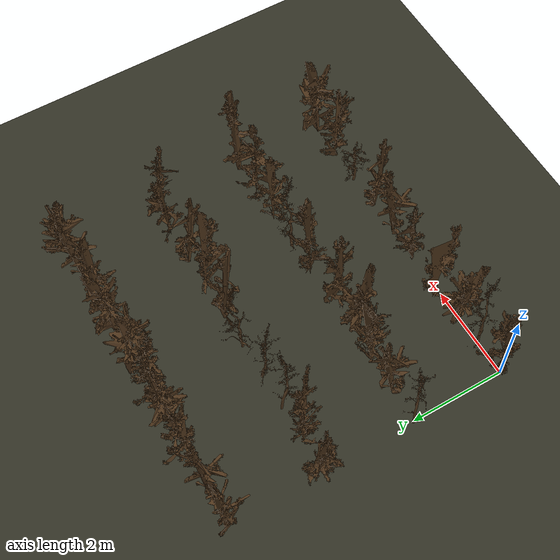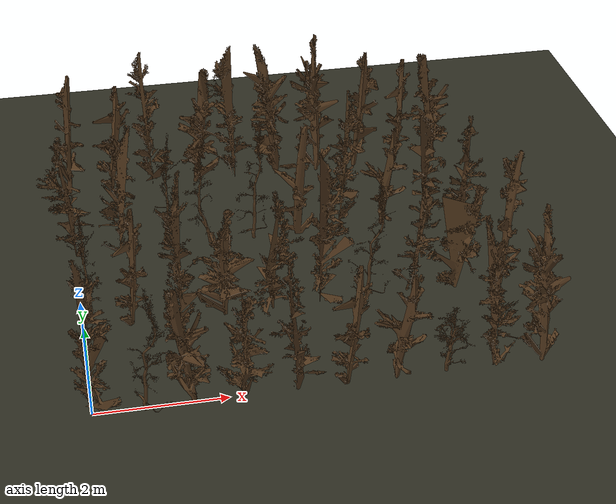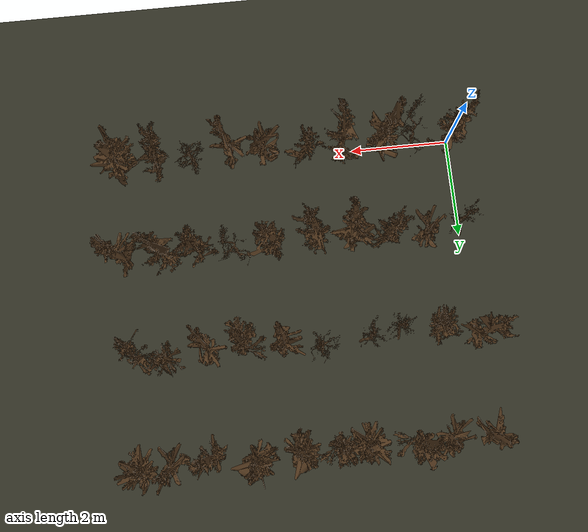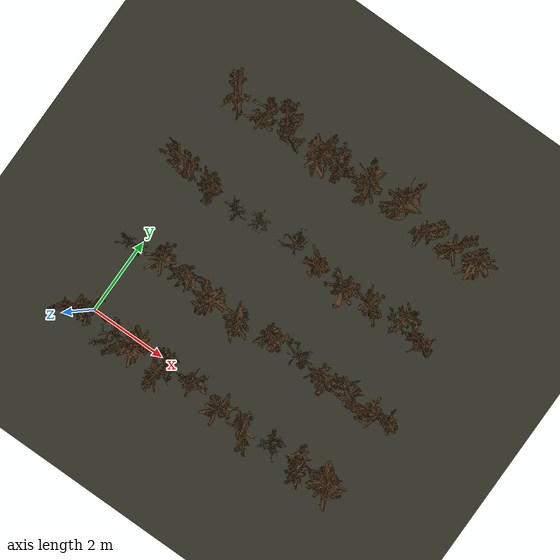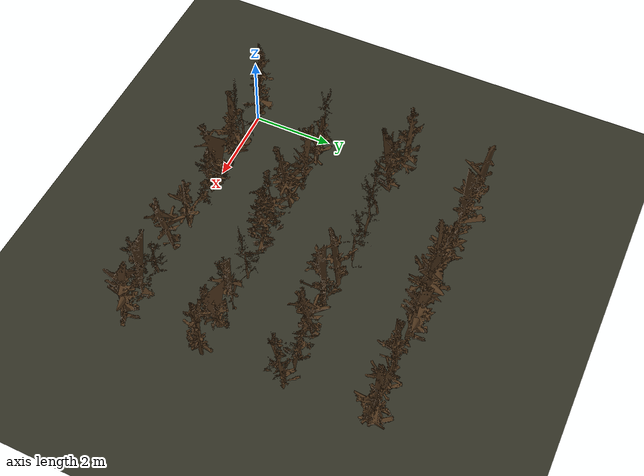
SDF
<sdf version="1.9">
 <world name="orchard_dormant_world">
  <model name="ground_plane">
   <static>true</static>
   <link name="link">
    <collision name="collision">
     <geometry><plane><normal>0 0 1</normal><size>500 500</size></plane></geometry>
    </collision>
    <visual name="visual">
     <geometry><plane><normal>0 0 1</normal><size>500 500</size></plane></geometry>
     <material><ambient>0.2 0.2 0.15 1</ambient><diffuse>0.2 0.2 0.15 1</diffuse></material>
    </visual>
   </link>
  </model>
  <model name="tree_r1_t1">
   <static>true</static>
   <pose>0.000 0.000 -0.100 0 0 3.366</pose>
   <link name="link">
    <collision name="collision">
     <geometry>
      <mesh>
       <uri>file:///home/administrator/ros2/orchard_navigation_rl_ws/src/orchard_worlds/models/orchard_model/tree3_collision.stl</uri>
      </mesh>
     </geometry>
    </collision>
    <visual name="visual">
     <geometry>
      <mesh>
       <uri>file:///home/administrator/ros2/orchard_navigation_rl_ws/src/orchard_worlds/models/orchard_model/tree3.stl</uri>
      </mesh>
     </geometry>
     <material><ambient>0.3 0.2 0.1 1</ambient><diffuse>0.3 0.2 0.1 1</diffuse></material>
    </visual>
   </link>
  </model>
  <model name="tree_r1_t2">
   <static>true</static>
   <pose>0.750 0.000 -0.100 0 0 1.388</pose>
   <link name="link">
    <collision name="collision">
     <geometry>
      <mesh>
       <uri>file:///home/administrator/ros2/orchard_navigation_rl_ws/src/orchard_worlds/models/orchard_model/tree9_collision.stl</uri>
      </mesh>
     </geometry>
    </collision>
    <visual name="visual">
     <geometry>
      <mesh>
       <uri>file:///home/administrator/ros2/orchard_navigation_rl_ws/src/orchard_worlds/models/orchard_model/tree9.stl</uri>
      </mesh>
     </geometry>
     <material><ambient>0.3 0.2 0.1 1</ambient><diffuse>0.3 0.2 0.1 1</diffuse></material>
    </visual>
   </link>
  </model>
  <model name="tree_r1_t3">
   <static>true</static>
   <pose>1.500 0.000 -0.100 0 0 6.178</pose>
   <link name="link">
    <collision name="collision">
     <geometry>
      <mesh>
       <uri>file:///home/administrator/ros2/orchard_navigation_rl_ws/src/orchard_worlds/models/orchard_model/tree12_collision.stl</uri>
      </mesh>
     </geometry>
    </collision>
    <visual name="visual">
     <geometry>
      <mesh>
       <uri>file:///home/administrator/ros2/orchard_navigation_rl_ws/src/orchard_worlds/models/orchard_model/tree12.stl</uri>
      </mesh>
     </geometry>
     <material><ambient>0.3 0.2 0.1 1</ambient><diffuse>0.3 0.2 0.1 1</diffuse></material>
    </visual>
   </link>
  </model>
  <model name="tree_r1_t4">
   <static>true</static>
   <pose>2.250 0.000 -0.100 0 0 1.082</pose>
   <link name="link">
    <collision name="collision">
     <geometry>
      <mesh>
       <uri>file:///home/administrator/ros2/orchard_navigation_rl_ws/src/orchard_worlds/models/orchard_model/tree11_collision.stl</uri>
      </mesh>
     </geometry>
    </collision>
    <visual name="visual">
     <geometry>
      <mesh>
       <uri>file:///home/administrator/ros2/orchard_navigation_rl_ws/src/orchard_worlds/models/orchard_model/tree11.stl</uri>
      </mesh>
     </geometry>
     <material><ambient>0.3 0.2 0.1 1</ambient><diffuse>0.3 0.2 0.1 1</diffuse></material>
    </visual>
   </link>
  </model>
  <model name="tree_r1_t5">
   <static>true</static>
   <pose>3.000 0.000 -0.100 0 0 4.075</pose>
   <link name="link">
    <collision name="collision">
     <geometry>
      <mesh>
       <uri>file:///home/administrator/ros2/orchard_navigation_rl_ws/src/orchard_worlds/models/orchard_model/tree2_collision.stl</uri>
      </mesh>
     </geometry>
    </collision>
    <visual name="visual">
     <geometry>
      <mesh>
       <uri>file:///home/administrator/ros2/orchard_navigation_rl_ws/src/orchard_worlds/models/orchard_model/tree2.stl</uri>
      </mesh>
     </geometry>
     <material><ambient>0.3 0.2 0.1 1</ambient><diffuse>0.3 0.2 0.1 1</diffuse></material>
    </visual>
   </link>
  </model>
  <model name="tree_r1_t6">
   <static>true</static>
   <pose>3.750 0.000 -0.100 0 0 2.890</pose>
   <link name="link">
    <collision name="collision">
     <geometry>
      <mesh>
       <uri>file:///home/administrator/ros2/orchard_navigation_rl_ws/src/orchard_worlds/models/orchard_model/tree8_collision.stl</uri>
      </mesh>
     </geometry>
    </collision>
    <visual name="visual">
     <geometry>
      <mesh>
       <uri>file:///home/administrator/ros2/orchard_navigation_rl_ws/src/orchard_worlds/models/orchard_model/tree8.stl</uri>
      </mesh>
     </geometry>
     <material><ambient>0.3 0.2 0.1 1</ambient><diffuse>0.3 0.2 0.1 1</diffuse></material>
    </visual>
   </link>
  </model>
  <model name="tree_r1_t7">
   <static>true</static>
   <pose>4.500 0.000 -0.100 0 0 1.266</pose>
   <link name="link">
    <collision name="collision">
     <geometry>
      <mesh>
       <uri>file:///home/administrator/ros2/orchard_navigation_rl_ws/src/orchard_worlds/models/orchard_model/tree8_collision.stl</uri>
      </mesh>
     </geometry>
    </collision>
    <visual name="visual">
     <geometry>
      <mesh>
       <uri>file:///home/administrator/ros2/orchard_navigation_rl_ws/src/orchard_worlds/models/orchard_model/tree8.stl</uri>
      </mesh>
     </geometry>
     <material><ambient>0.3 0.2 0.1 1</ambient><diffuse>0.3 0.2 0.1 1</diffuse></material>
    </visual>
   </link>
  </model>
  <model name="tree_r1_t8">
   <static>true</static>
   <pose>5.250 0.000 -0.100 0 0 4.378</pose>
   <link name="link">
    <collision name="collision">
     <geometry>
      <mesh>
       <uri>file:///home/administrator/ros2/orchard_navigation_rl_ws/src/orchard_worlds/models/orchard_model/tree14_collision.stl</uri>
      </mesh>
     </geometry>
    </collision>
    <visual name="visual">
     <geometry>
      <mesh>
       <uri>file:///home/administrator/ros2/orchard_navigation_rl_ws/src/orchard_worlds/models/orchard_model/tree14.stl</uri>
      </mesh>
     </geometry>
     <material><ambient>0.3 0.2 0.1 1</ambient><diffuse>0.3 0.2 0.1 1</diffuse></material>
    </visual>
   </link>
  </model>
  <model name="tree_r1_t9">
   <static>true</static>
   <pose>6.000 0.000 -0.100 0 0 4.368</pose>
   <link name="link">
    <collision name="collision">
     <geometry>
      <mesh>
       <uri>file:///home/administrator/ros2/orchard_navigation_rl_ws/src/orchard_worlds/models/orchard_model/tree5_collision.stl</uri>
      </mesh>
     </geometry>
    </collision>
    <visual name="visual">
     <geometry>
      <mesh>
       <uri>file:///home/administrator/ros2/orchard_navigation_rl_ws/src/orchard_worlds/models/orchard_model/tree5.stl</uri>
      </mesh>
     </geometry>
     <material><ambient>0.3 0.2 0.1 1</ambient><diffuse>0.3 0.2 0.1 1</diffuse></material>
    </visual>
   </link>
  </model>
  <model name="tree_r1_t10">
   <static>true</static>
   <pose>6.750 0.000 -0.100 0 0 4.350</pose>
   <link name="link">
    <collision name="collision">
     <geometry>
      <mesh>
       <uri>file:///home/administrator/ros2/orchard_navigation_rl_ws/src/orchard_worlds/models/orchard_model/tree7_collision.stl</uri>
      </mesh>
     </geometry>
    </collision>
    <visual name="visual">
     <geometry>
      <mesh>
       <uri>file:///home/administrator/ros2/orchard_navigation_rl_ws/src/orchard_worlds/models/orchard_model/tree7.stl</uri>
      </mesh>
     </geometry>
     <material><ambient>0.3 0.2 0.1 1</ambient><diffuse>0.3 0.2 0.1 1</diffuse></material>
    </visual>
   </link>
  </model>
  <model name="tree_r2_t1">
   <static>true</static>
   <pose>0.000 2.000 -0.100 0 0 3.266</pose>
   <link name="link">
    <collision name="collision">
     <geometry>
      <mesh>
       <uri>file:///home/administrator/ros2/orchard_navigation_rl_ws/src/orchard_worlds/models/orchard_model/tree16_collision.stl</uri>
      </mesh>
     </geometry>
    </collision>
    <visual name="visual">
     <geometry>
      <mesh>
       <uri>file:///home/administrator/ros2/orchard_navigation_rl_ws/src/orchard_worlds/models/orchard_model/tree16.stl</uri>
      </mesh>
     </geometry>
     <material><ambient>0.3 0.2 0.1 1</ambient><diffuse>0.3 0.2 0.1 1</diffuse></material>
    </visual>
   </link>
  </model>
  <model name="tree_r2_t2">
   <static>true</static>
   <pose>0.750 2.000 -0.100 0 0 3.313</pose>
   <link name="link">
    <collision name="collision">
     <geometry>
      <mesh>
       <uri>file:///home/administrator/ros2/orchard_navigation_rl_ws/src/orchard_worlds/models/orchard_model/tree8_collision.stl</uri>
      </mesh>
     </geometry>
    </collision>
    <visual name="visual">
     <geometry>
      <mesh>
       <uri>file:///home/administrator/ros2/orchard_navigation_rl_ws/src/orchard_worlds/models/orchard_model/tree8.stl</uri>
      </mesh>
     </geometry>
     <material><ambient>0.3 0.2 0.1 1</ambient><diffuse>0.3 0.2 0.1 1</diffuse></material>
    </visual>
   </link>
  </model>
  <model name="tree_r2_t3">
   <static>true</static>
   <pose>1.500 2.000 -0.100 0 0 3.292</pose>
   <link name="link">
    <collision name="collision">
     <geometry>
      <mesh>
       <uri>file:///home/administrator/ros2/orchard_navigation_rl_ws/src/orchard_worlds/models/orchard_model/tree5_collision.stl</uri>
      </mesh>
     </geometry>
    </collision>
    <visual name="visual">
     <geometry>
      <mesh>
       <uri>file:///home/administrator/ros2/orchard_navigation_rl_ws/src/orchard_worlds/models/orchard_model/tree5.stl</uri>
      </mesh>
     </geometry>
     <material><ambient>0.3 0.2 0.1 1</ambient><diffuse>0.3 0.2 0.1 1</diffuse></material>
    </visual>
   </link>
  </model>
  <model name="tree_r2_t4">
   <static>true</static>
   <pose>2.250 2.000 -0.100 0 0 1.166</pose>
   <link name="link">
    <collision name="collision">
     <geometry>
      <mesh>
       <uri>file:///home/administrator/ros2/orchard_navigation_rl_ws/src/orchard_worlds/models/orchard_model/tree12_collision.stl</uri>
      </mesh>
     </geometry>
    </collision>
    <visual name="visual">
     <geometry>
      <mesh>
       <uri>file:///home/administrator/ros2/orchard_navigation_rl_ws/src/orchard_worlds/models/orchard_model/tree12.stl</uri>
      </mesh>
     </geometry>
     <material><ambient>0.3 0.2 0.1 1</ambient><diffuse>0.3 0.2 0.1 1</diffuse></material>
    </visual>
   </link>
  </model>
  <model name="tree_r2_t5">
   <static>true</static>
   <pose>3.000 2.000 -0.100 0 0 1.026</pose>
   <link name="link">
    <collision name="collision">
     <geometry>
      <mesh>
       <uri>file:///home/administrator/ros2/orchard_navigation_rl_ws/src/orchard_worlds/models/orchard_model/tree10_collision.stl</uri>
      </mesh>
     </geometry>
    </collision>
    <visual name="visual">
     <geometry>
      <mesh>
       <uri>file:///home/administrator/ros2/orchard_navigation_rl_ws/src/orchard_worlds/models/orchard_model/tree10.stl</uri>
      </mesh>
     </geometry>
     <material><ambient>0.3 0.2 0.1 1</ambient><diffuse>0.3 0.2 0.1 1</diffuse></material>
    </visual>
   </link>
  </model>
  <model name="tree_r2_t6">
   <static>true</static>
   <pose>3.750 2.000 -0.100 0 0 2.629</pose>
   <link name="link">
    <collision name="collision">
     <geometry>
      <mesh>
       <uri>file:///home/administrator/ros2/orchard_navigation_rl_ws/src/orchard_worlds/models/orchard_model/tree3_collision.stl</uri>
      </mesh>
     </geometry>
    </collision>
    <visual name="visual">
     <geometry>
      <mesh>
       <uri>file:///home/administrator/ros2/orchard_navigation_rl_ws/src/orchard_worlds/models/orchard_model/tree3.stl</uri>
      </mesh>
     </geometry>
     <material><ambient>0.3 0.2 0.1 1</ambient><diffuse>0.3 0.2 0.1 1</diffuse></material>
    </visual>
   </link>
  </model>
  <model name="tree_r2_t7">
   <static>true</static>
   <pose>4.500 2.000 -0.100 0 0 2.021</pose>
   <link name="link">
    <collision name="collision">
     <geometry>
      <mesh>
       <uri>file:///home/administrator/ros2/orchard_navigation_rl_ws/src/orchard_worlds/models/orchard_model/tree9_collision.stl</uri>
      </mesh>
     </geometry>
    </collision>
    <visual name="visual">
     <geometry>
      <mesh>
       <uri>file:///home/administrator/ros2/orchard_navigation_rl_ws/src/orchard_worlds/models/orchard_model/tree9.stl</uri>
      </mesh>
     </geometry>
     <material><ambient>0.3 0.2 0.1 1</ambient><diffuse>0.3 0.2 0.1 1</diffuse></material>
    </visual>
   </link>
  </model>
  <model name="tree_r2_t8">
   <static>true</static>
   <pose>5.250 2.000 -0.100 0 0 1.658</pose>
   <link name="link">
    <collision name="collision">
     <geometry>
      <mesh>
       <uri>file:///home/administrator/ros2/orchard_navigation_rl_ws/src/orchard_worlds/models/orchard_model/tree1_collision.stl</uri>
      </mesh>
     </geometry>
    </collision>
    <visual name="visual">
     <geometry>
      <mesh>
       <uri>file:///home/administrator/ros2/orchard_navigation_rl_ws/src/orchard_worlds/models/orchard_model/tree1.stl</uri>
      </mesh>
     </geometry>
     <material><ambient>0.3 0.2 0.1 1</ambient><diffuse>0.3 0.2 0.1 1</diffuse></material>
    </visual>
   </link>
  </model>
  <model name="tree_r2_t9">
   <static>true</static>
   <pose>6.000 2.000 -0.100 0 0 2.232</pose>
   <link name="link">
    <collision name="collision">
     <geometry>
      <mesh>
       <uri>file:///home/administrator/ros2/orchard_navigation_rl_ws/src/orchard_worlds/models/orchard_model/tree11_collision.stl</uri>
      </mesh>
     </geometry>
    </collision>
    <visual name="visual">
     <geometry>
      <mesh>
       <uri>file:///home/administrator/ros2/orchard_navigation_rl_ws/src/orchard_worlds/models/orchard_model/tree11.stl</uri>
      </mesh>
     </geometry>
     <material><ambient>0.3 0.2 0.1 1</ambient><diffuse>0.3 0.2 0.1 1</diffuse></material>
    </visual>
   </link>
  </model>
  <model name="tree_r2_t10">
   <static>true</static>
   <pose>6.750 2.000 -0.100 0 0 2.807</pose>
   <link name="link">
    <collision name="collision">
     <geometry>
      <mesh>
       <uri>file:///home/administrator/ros2/orchard_navigation_rl_ws/src/orchard_worlds/models/orchard_model/tree6_collision.stl</uri>
      </mesh>
     </geometry>
    </collision>
    <visual name="visual">
     <geometry>
      <mesh>
       <uri>file:///home/administrator/ros2/orchard_navigation_rl_ws/src/orchard_worlds/models/orchard_model/tree6.stl</uri>
      </mesh>
     </geometry>
     <material><ambient>0.3 0.2 0.1 1</ambient><diffuse>0.3 0.2 0.1 1</diffuse></material>
    </visual>
   </link>
  </model>
  <model name="tree_r3_t1">
   <static>true</static>
   <pose>0.000 4.000 -0.100 0 0 4.870</pose>
   <link name="link">
    <collision name="collision">
     <geometry>
      <mesh>
       <uri>file:///home/administrator/ros2/orchard_navigation_rl_ws/src/orchard_worlds/models/orchard_model/tree10_collision.stl</uri>
      </mesh>
     </geometry>
    </collision>
    <visual name="visual">
     <geometry>
      <mesh>
       <uri>file:///home/administrator/ros2/orchard_navigation_rl_ws/src/orchard_worlds/models/orchard_model/tree10.stl</uri>
      </mesh>
     </geometry>
     <material><ambient>0.3 0.2 0.1 1</ambient><diffuse>0.3 0.2 0.1 1</diffuse></material>
    </visual>
   </link>
  </model>
  <model name="tree_r3_t2">
   <static>true</static>
   <pose>0.750 4.000 -0.100 0 0 1.379</pose>
   <link name="link">
    <collision name="collision">
     <geometry>
      <mesh>
       <uri>file:///home/administrator/ros2/orchard_navigation_rl_ws/src/orchard_worlds/models/orchard_model/tree5_collision.stl</uri>
      </mesh>
     </geometry>
    </collision>
    <visual name="visual">
     <geometry>
      <mesh>
       <uri>file:///home/administrator/ros2/orchard_navigation_rl_ws/src/orchard_worlds/models/orchard_model/tree5.stl</uri>
      </mesh>
     </geometry>
     <material><ambient>0.3 0.2 0.1 1</ambient><diffuse>0.3 0.2 0.1 1</diffuse></material>
    </visual>
   </link>
  </model>
  <model name="tree_r3_t3">
   <static>true</static>
   <pose>1.500 4.000 -0.100 0 0 2.669</pose>
   <link name="link">
    <collision name="collision">
     <geometry>
      <mesh>
       <uri>file:///home/administrator/ros2/orchard_navigation_rl_ws/src/orchard_worlds/models/orchard_model/tree16_collision.stl</uri>
      </mesh>
     </geometry>
    </collision>
    <visual name="visual">
     <geometry>
      <mesh>
       <uri>file:///home/administrator/ros2/orchard_navigation_rl_ws/src/orchard_worlds/models/orchard_model/tree16.stl</uri>
      </mesh>
     </geometry>
     <material><ambient>0.3 0.2 0.1 1</ambient><diffuse>0.3 0.2 0.1 1</diffuse></material>
    </visual>
   </link>
  </model>
  <model name="tree_r3_t4">
   <static>true</static>
   <pose>2.250 4.000 -0.100 0 0 0.614</pose>
   <link name="link">
    <collision name="collision">
     <geometry>
      <mesh>
       <uri>file:///home/administrator/ros2/orchard_navigation_rl_ws/src/orchard_worlds/models/orchard_model/tree16_collision.stl</uri>
      </mesh>
     </geometry>
    </collision>
    <visual name="visual">
     <geometry>
      <mesh>
       <uri>file:///home/administrator/ros2/orchard_navigation_rl_ws/src/orchard_worlds/models/orchard_model/tree16.stl</uri>
      </mesh>
     </geometry>
     <material><ambient>0.3 0.2 0.1 1</ambient><diffuse>0.3 0.2 0.1 1</diffuse></material>
    </visual>
   </link>
  </model>
  <model name="tree_r3_t5">
   <static>true</static>
   <pose>3.000 4.000 -0.100 0 0 2.760</pose>
   <link name="link">
    <collision name="collision">
     <geometry>
      <mesh>
       <uri>file:///home/administrator/ros2/orchard_navigation_rl_ws/src/orchard_worlds/models/orchard_model/tree9_collision.stl</uri>
      </mesh>
     </geometry>
    </collision>
    <visual name="visual">
     <geometry>
      <mesh>
       <uri>file:///home/administrator/ros2/orchard_navigation_rl_ws/src/orchard_worlds/models/orchard_model/tree9.stl</uri>
      </mesh>
     </geometry>
     <material><ambient>0.3 0.2 0.1 1</ambient><diffuse>0.3 0.2 0.1 1</diffuse></material>
    </visual>
   </link>
  </model>
  <model name="tree_r3_t6">
   <static>true</static>
   <pose>3.750 4.000 -0.100 0 0 1.208</pose>
   <link name="link">
    <collision name="collision">
     <geometry>
      <mesh>
       <uri>file:///home/administrator/ros2/orchard_navigation_rl_ws/src/orchard_worlds/models/orchard_model/tree13_collision.stl</uri>
      </mesh>
     </geometry>
    </collision>
    <visual name="visual">
     <geometry>
      <mesh>
       <uri>file:///home/administrator/ros2/orchard_navigation_rl_ws/src/orchard_worlds/models/orchard_model/tree13.stl</uri>
      </mesh>
     </geometry>
     <material><ambient>0.3 0.2 0.1 1</ambient><diffuse>0.3 0.2 0.1 1</diffuse></material>
    </visual>
   </link>
  </model>
  <model name="tree_r3_t7">
   <static>true</static>
   <pose>4.500 4.000 -0.100 0 0 0.909</pose>
   <link name="link">
    <collision name="collision">
     <geometry>
      <mesh>
       <uri>file:///home/administrator/ros2/orchard_navigation_rl_ws/src/orchard_worlds/models/orchard_model/tree3_collision.stl</uri>
      </mesh>
     </geometry>
    </collision>
    <visual name="visual">
     <geometry>
      <mesh>
       <uri>file:///home/administrator/ros2/orchard_navigation_rl_ws/src/orchard_worlds/models/orchard_model/tree3.stl</uri>
      </mesh>
     </geometry>
     <material><ambient>0.3 0.2 0.1 1</ambient><diffuse>0.3 0.2 0.1 1</diffuse></material>
    </visual>
   </link>
  </model>
  <model name="tree_r3_t8">
   <static>true</static>
   <pose>5.250 4.000 -0.100 0 0 1.098</pose>
   <link name="link">
    <collision name="collision">
     <geometry>
      <mesh>
       <uri>file:///home/administrator/ros2/orchard_navigation_rl_ws/src/orchard_worlds/models/orchard_model/tree8_collision.stl</uri>
      </mesh>
     </geometry>
    </collision>
    <visual name="visual">
     <geometry>
      <mesh>
       <uri>file:///home/administrator/ros2/orchard_navigation_rl_ws/src/orchard_worlds/models/orchard_model/tree8.stl</uri>
      </mesh>
     </geometry>
     <material><ambient>0.3 0.2 0.1 1</ambient><diffuse>0.3 0.2 0.1 1</diffuse></material>
    </visual>
   </link>
  </model>
  <model name="tree_r3_t9">
   <static>true</static>
   <pose>6.000 4.000 -0.100 0 0 3.367</pose>
   <link name="link">
    <collision name="collision">
     <geometry>
      <mesh>
       <uri>file:///home/administrator/ros2/orchard_navigation_rl_ws/src/orchard_worlds/models/orchard_model/tree1_collision.stl</uri>
      </mesh>
     </geometry>
    </collision>
    <visual name="visual">
     <geometry>
      <mesh>
       <uri>file:///home/administrator/ros2/orchard_navigation_rl_ws/src/orchard_worlds/models/orchard_model/tree1.stl</uri>
      </mesh>
     </geometry>
     <material><ambient>0.3 0.2 0.1 1</ambient><diffuse>0.3 0.2 0.1 1</diffuse></material>
    </visual>
   </link>
  </model>
  <model name="tree_r3_t10">
   <static>true</static>
   <pose>6.750 4.000 -0.100 0 0 0.286</pose>
   <link name="link">
    <collision name="collision">
     <geometry>
      <mesh>
       <uri>file:///home/administrator/ros2/orchard_navigation_rl_ws/src/orchard_worlds/models/orchard_model/tree2_collision.stl</uri>
      </mesh>
     </geometry>
    </collision>
    <visual name="visual">
     <geometry>
      <mesh>
       <uri>file:///home/administrator/ros2/orchard_navigation_rl_ws/src/orchard_worlds/models/orchard_model/tree2.stl</uri>
      </mesh>
     </geometry>
     <material><ambient>0.3 0.2 0.1 1</ambient><diffuse>0.3 0.2 0.1 1</diffuse></material>
    </visual>
   </link>
  </model>
  <model name="tree_r4_t1">
   <static>true</static>
   <pose>0.000 6.000 -0.100 0 0 3.317</pose>
   <link name="link">
    <collision name="collision">
     <geometry>
      <mesh>
       <uri>file:///home/administrator/ros2/orchard_navigation_rl_ws/src/orchard_worlds/models/orchard_model/tree13_collision.stl</uri>
      </mesh>
     </geometry>
    </collision>
    <visual name="visual">
     <geometry>
      <mesh>
       <uri>file:///home/administrator/ros2/orchard_navigation_rl_ws/src/orchard_worlds/models/orchard_model/tree13.stl</uri>
      </mesh>
     </geometry>
     <material><ambient>0.3 0.2 0.1 1</ambient><diffuse>0.3 0.2 0.1 1</diffuse></material>
    </visual>
   </link>
  </model>
  <model name="tree_r4_t2">
   <static>true</static>
   <pose>0.750 6.000 -0.100 0 0 2.829</pose>
   <link name="link">
    <collision name="collision">
     <geometry>
      <mesh>
       <uri>file:///home/administrator/ros2/orchard_navigation_rl_ws/src/orchard_worlds/models/orchard_model/tree8_collision.stl</uri>
      </mesh>
     </geometry>
    </collision>
    <visual name="visual">
     <geometry>
      <mesh>
       <uri>file:///home/administrator/ros2/orchard_navigation_rl_ws/src/orchard_worlds/models/orchard_model/tree8.stl</uri>
      </mesh>
     </geometry>
     <material><ambient>0.3 0.2 0.1 1</ambient><diffuse>0.3 0.2 0.1 1</diffuse></material>
    </visual>
   </link>
  </model>
  <model name="tree_r4_t3">
   <static>true</static>
   <pose>1.500 6.000 -0.100 0 0 4.231</pose>
   <link name="link">
    <collision name="collision">
     <geometry>
      <mesh>
       <uri>file:///home/administrator/ros2/orchard_navigation_rl_ws/src/orchard_worlds/models/orchard_model/tree3_collision.stl</uri>
      </mesh>
     </geometry>
    </collision>
    <visual name="visual">
     <geometry>
      <mesh>
       <uri>file:///home/administrator/ros2/orchard_navigation_rl_ws/src/orchard_worlds/models/orchard_model/tree3.stl</uri>
      </mesh>
     </geometry>
     <material><ambient>0.3 0.2 0.1 1</ambient><diffuse>0.3 0.2 0.1 1</diffuse></material>
    </visual>
   </link>
  </model>
  <model name="tree_r4_t4">
   <static>true</static>
   <pose>2.250 6.000 -0.100 0 0 3.301</pose>
   <link name="link">
    <collision name="collision">
     <geometry>
      <mesh>
       <uri>file:///home/administrator/ros2/orchard_navigation_rl_ws/src/orchard_worlds/models/orchard_model/tree12_collision.stl</uri>
      </mesh>
     </geometry>
    </collision>
    <visual name="visual">
     <geometry>
      <mesh>
       <uri>file:///home/administrator/ros2/orchard_navigation_rl_ws/src/orchard_worlds/models/orchard_model/tree12.stl</uri>
      </mesh>
     </geometry>
     <material><ambient>0.3 0.2 0.1 1</ambient><diffuse>0.3 0.2 0.1 1</diffuse></material>
    </visual>
   </link>
  </model>
  <model name="tree_r4_t5">
   <static>true</static>
   <pose>3.000 6.000 -0.100 0 0 5.199</pose>
   <link name="link">
    <collision name="collision">
     <geometry>
      <mesh>
       <uri>file:///home/administrator/ros2/orchard_navigation_rl_ws/src/orchard_worlds/models/orchard_model/tree3_collision.stl</uri>
      </mesh>
     </geometry>
    </collision>
    <visual name="visual">
     <geometry>
      <mesh>
       <uri>file:///home/administrator/ros2/orchard_navigation_rl_ws/src/orchard_worlds/models/orchard_model/tree3.stl</uri>
      </mesh>
     </geometry>
     <material><ambient>0.3 0.2 0.1 1</ambient><diffuse>0.3 0.2 0.1 1</diffuse></material>
    </visual>
   </link>
  </model>
  <model name="tree_r4_t6">
   <static>true</static>
   <pose>3.750 6.000 -0.100 0 0 5.262</pose>
   <link name="link">
    <collision name="collision">
     <geometry>
      <mesh>
       <uri>file:///home/administrator/ros2/orchard_navigation_rl_ws/src/orchard_worlds/models/orchard_model/tree7_collision.stl</uri>
      </mesh>
     </geometry>
    </collision>
    <visual name="visual">
     <geometry>
      <mesh>
       <uri>file:///home/administrator/ros2/orchard_navigation_rl_ws/src/orchard_worlds/models/orchard_model/tree7.stl</uri>
      </mesh>
     </geometry>
     <material><ambient>0.3 0.2 0.1 1</ambient><diffuse>0.3 0.2 0.1 1</diffuse></material>
    </visual>
   </link>
  </model>
  <model name="tree_r4_t7">
   <static>true</static>
   <pose>4.500 6.000 -0.100 0 0 4.201</pose>
   <link name="link">
    <collision name="collision">
     <geometry>
      <mesh>
       <uri>file:///home/administrator/ros2/orchard_navigation_rl_ws/src/orchard_worlds/models/orchard_model/tree7_collision.stl</uri>
      </mesh>
     </geometry>
    </collision>
    <visual name="visual">
     <geometry>
      <mesh>
       <uri>file:///home/administrator/ros2/orchard_navigation_rl_ws/src/orchard_worlds/models/orchard_model/tree7.stl</uri>
      </mesh>
     </geometry>
     <material><ambient>0.3 0.2 0.1 1</ambient><diffuse>0.3 0.2 0.1 1</diffuse></material>
    </visual>
   </link>
  </model>
  <model name="tree_r4_t8">
   <static>true</static>
   <pose>5.250 6.000 -0.100 0 0 2.812</pose>
   <link name="link">
    <collision name="collision">
     <geometry>
      <mesh>
       <uri>file:///home/administrator/ros2/orchard_navigation_rl_ws/src/orchard_worlds/models/orchard_model/tree15_collision.stl</uri>
      </mesh>
     </geometry>
    </collision>
    <visual name="visual">
     <geometry>
      <mesh>
       <uri>file:///home/administrator/ros2/orchard_navigation_rl_ws/src/orchard_worlds/models/orchard_model/tree15.stl</uri>
      </mesh>
     </geometry>
     <material><ambient>0.3 0.2 0.1 1</ambient><diffuse>0.3 0.2 0.1 1</diffuse></material>
    </visual>
   </link>
  </model>
  <model name="tree_r4_t9">
   <static>true</static>
   <pose>6.000 6.000 -0.100 0 0 3.229</pose>
   <link name="link">
    <collision name="collision">
     <geometry>
      <mesh>
       <uri>file:///home/administrator/ros2/orchard_navigation_rl_ws/src/orchard_worlds/models/orchard_model/tree8_collision.stl</uri>
      </mesh>
     </geometry>
    </collision>
    <visual name="visual">
     <geometry>
      <mesh>
       <uri>file:///home/administrator/ros2/orchard_navigation_rl_ws/src/orchard_worlds/models/orchard_model/tree8.stl</uri>
      </mesh>
     </geometry>
     <material><ambient>0.3 0.2 0.1 1</ambient><diffuse>0.3 0.2 0.1 1</diffuse></material>
    </visual>
   </link>
  </model>
  <model name="tree_r4_t10">
   <static>true</static>
   <pose>6.750 6.000 -0.100 0 0 5.650</pose>
   <link name="link">
    <collision name="collision">
     <geometry>
      <mesh>
       <uri>file:///home/administrator/ros2/orchard_navigation_rl_ws/src/orchard_worlds/models/orchard_model/tree12_collision.stl</uri>
      </mesh>
     </geometry>
    </collision>
    <visual name="visual">
     <geometry>
      <mesh>
       <uri>file:///home/administrator/ros2/orchard_navigation_rl_ws/src/orchard_worlds/models/orchard_model/tree12.stl</uri>
      </mesh>
     </geometry>
     <material><ambient>0.3 0.2 0.1 1</ambient><diffuse>0.3 0.2 0.1 1</diffuse></material>
    </visual>
   </link>
  </model>
 </world>
</sdf>
